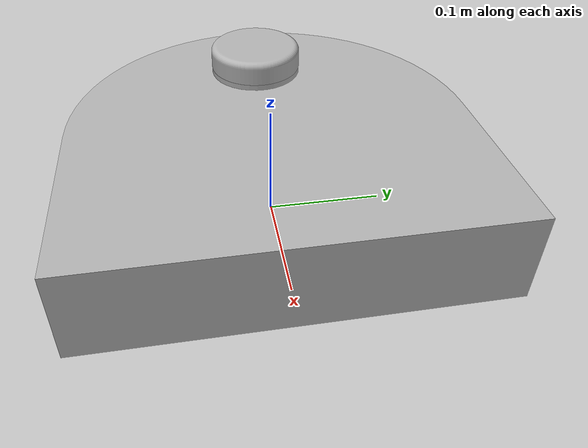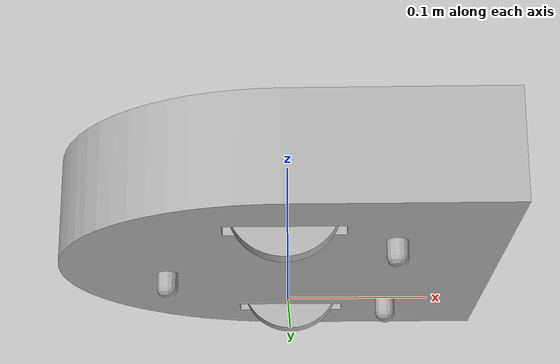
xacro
<?xml version="1.0" ?>
<robot name="gina_v2" xmlns:xacro="http://www.ros.org/wiki/xacro">

<xacro:include filename="$(find gina_v2_description)/urdf/materials.xacro" />
<xacro:include filename="$(find gina_v2_description)/urdf/gina_v2.trans" />

<xacro:include filename="$(find gina_v2_description)/gazeebo/gina_v2_materials.gazebo" />
<xacro:include filename="$(find gina_v2_description)/gazeebo/gina_v2_physics.gazebo" />
<xacro:include filename="$(find gina_v2_description)/gazeebo/gina_v2_plugins.gazebo" />

<link name="base_link">
  <inertial>
    <origin rpy="0 0 0" xyz="0.007280008373306348 1.0580101615215342e-16 0.05716949520129229"/>
    <mass value="7.289641774274636"/>
    <inertia ixx="0.061597" ixy="0.0" ixz="0.000113" iyy="0.057431" iyz="0.0" izz="0.111891"/>
  </inertial>
  <visual>
    <origin rpy="0 0 0" xyz="0 0 0"/>
    <geometry>
      <mesh filename="package://gina_v2_description/meshes/base_link.stl" scale="0.001 0.001 0.001"/>
    </geometry>
    <material name="silver"/>
  </visual>
  <collision>
    <origin rpy="0 0 0" xyz="0 0 0"/>
    <geometry>
      <mesh filename="package://gina_v2_description/meshes/base_link.stl" scale="0.001 0.001 0.001"/>
    </geometry>
  </collision>
</link>

<link name="right_wheel_1">
  <inertial>
    <origin rpy="0 0 0" xyz="-8.137998397877707e-18 -0.007499999999999979 6.938893903907228e-18"/>
    <mass value="0.07404034880145716"/>
    <inertia ixx="2.9e-05" ixy="-0.0" ixz="0.0" iyy="5.5e-05" iyz="0.0" izz="2.9e-05"/>
  </inertial>
  <visual>
    <origin rpy="0 0 0" xyz="0.0 0.101 -0.0385"/>
    <geometry>
      <mesh filename="package://gina_v2_description/meshes/right_wheel_1.stl" scale="0.001 0.001 0.001"/>
    </geometry>
    <material name="silver"/>
  </visual>
  <collision>
    <origin rpy="0 0 0" xyz="0.0 0.101 -0.0385"/>
    <geometry>
      <mesh filename="package://gina_v2_description/meshes/right_wheel_1.stl" scale="0.001 0.001 0.001"/>
    </geometry>
  </collision>
</link>

<link name="left_wheel_1">
  <inertial>
    <origin rpy="0 0 0" xyz="-8.137998397877701e-18 0.007500000000000048 6.938893903907228e-18"/>
    <mass value="0.0740403488014572"/>
    <inertia ixx="2.9e-05" ixy="-0.0" ixz="0.0" iyy="5.5e-05" iyz="0.0" izz="2.9e-05"/>
  </inertial>
  <visual>
    <origin rpy="0 0 0" xyz="0.0 -0.101 -0.0385"/>
    <geometry>
      <mesh filename="package://gina_v2_description/meshes/left_wheel_1.stl" scale="0.001 0.001 0.001"/>
    </geometry>
    <material name="silver"/>
  </visual>
  <collision>
    <origin rpy="0 0 0" xyz="0.0 -0.101 -0.0385"/>
    <geometry>
      <mesh filename="package://gina_v2_description/meshes/left_wheel_1.stl" scale="0.001 0.001 0.001"/>
    </geometry>
  </collision>
</link>

<link name="lidar_1">
  <inertial>
    <origin rpy="0 0 0" xyz="2.7755575615628914e-17 3.437409015839573e-17 0.00988282593479857"/>
    <mass value="0.10517344380282838"/>
    <inertia ixx="4.5e-05" ixy="-0.0" ixz="0.0" iyy="4.5e-05" iyz="-0.0" izz="8.3e-05"/>
  </inertial>
  <visual>
    <origin rpy="0 0 0" xyz="0.088 -0.0 -0.1"/>
    <geometry>
      <mesh filename="package://gina_v2_description/meshes/lidar_1.stl" scale="0.001 0.001 0.001"/>
    </geometry>
    <material name="silver"/>
  </visual>
  <collision>
    <origin rpy="0 0 0" xyz="0.088 -0.0 -0.1"/>
    <geometry>
      <mesh filename="package://gina_v2_description/meshes/lidar_1.stl" scale="0.001 0.001 0.001"/>
    </geometry>
  </collision>
</link>

<joint name="Rev4" type="continuous">
  <origin rpy="0 0 0" xyz="0.0 -0.101 0.0385"/>
  <parent link="base_link"/>
  <child link="right_wheel_1"/>
  <axis xyz="0.0 1.0 0.0"/>
</joint>

<joint name="Rev5" type="continuous">
  <origin rpy="0 0 0" xyz="0.0 0.101 0.0385"/>
  <parent link="base_link"/>
  <child link="left_wheel_1"/>
  <axis xyz="0.0 1.0 0.0"/>
</joint>

<joint name="Rigid6" type="fixed">
  <origin rpy="0 0 0" xyz="-0.088 0.0 0.1"/>
  <parent link="base_link"/>
  <child link="lidar_1"/>
</joint>

</robot>

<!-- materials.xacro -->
<robot name="gina_v2" xmlns:xacro="http://www.ros.org/wiki/xacro" >

<material name="silver">
  <color rgba="0.700 0.700 0.700 1.000"/>
</material>

</robot>

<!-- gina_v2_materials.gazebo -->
<robot name="gina_v2" xmlns:xacro="http://www.ros.org/wiki/xacro" >

<xacro:property name="body_color" value="Gazebo/Silver" />
<xacro:property name="wheel_color" value="Gazebo/Red" />
<xacro:property name="lidar_color" value="Gazebo/Green" />

<gazebo reference="base_link">
  <material>${body_color}</material>
</gazebo>

<gazebo reference="right_wheel_1">
  <material>${wheel_color}</material>
</gazebo>

<gazebo reference="left_wheel_1">
  <material>${wheel_color}</material>
</gazebo>

<gazebo reference="lidar_1">
  <material>${lidar_color}</material>
</gazebo>

</robot>
